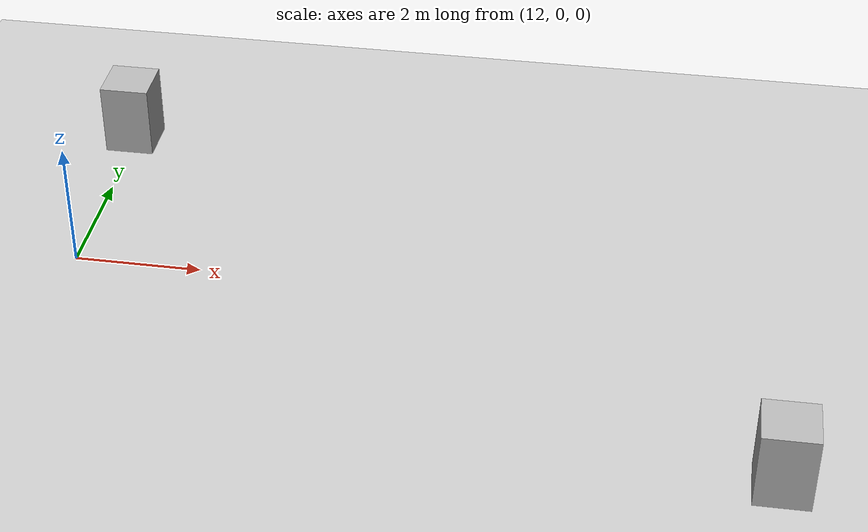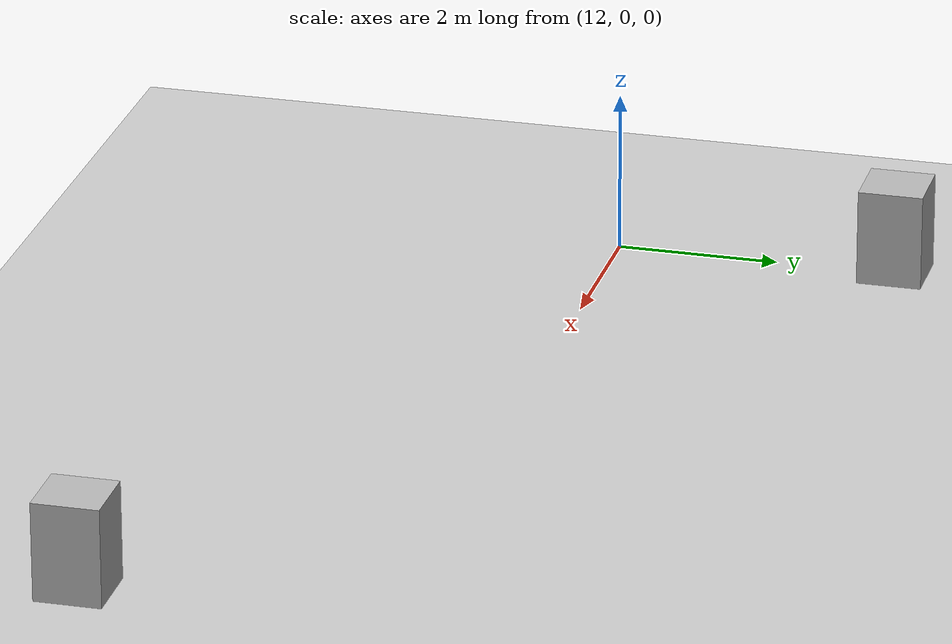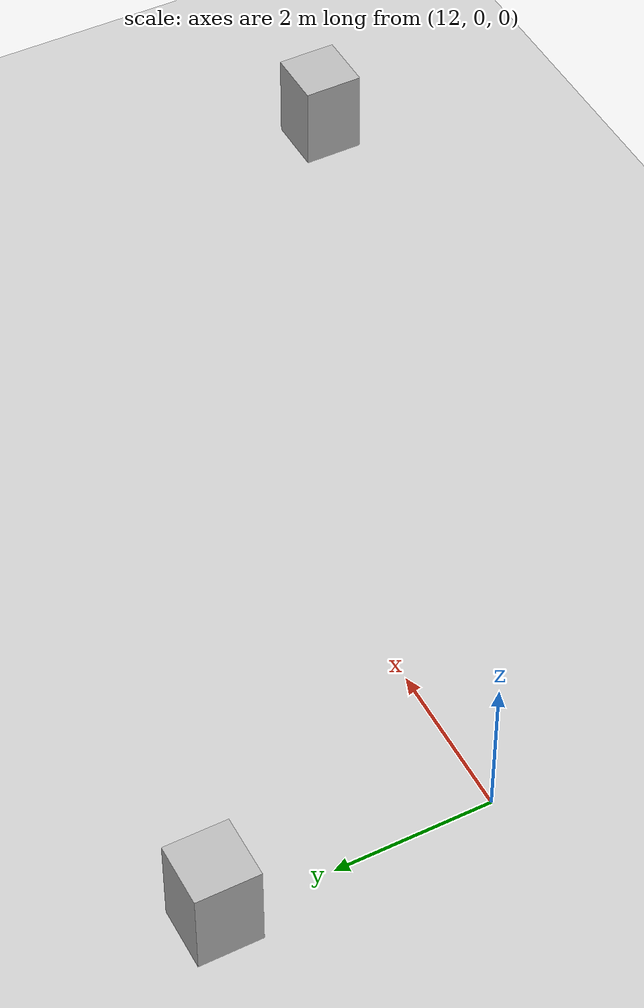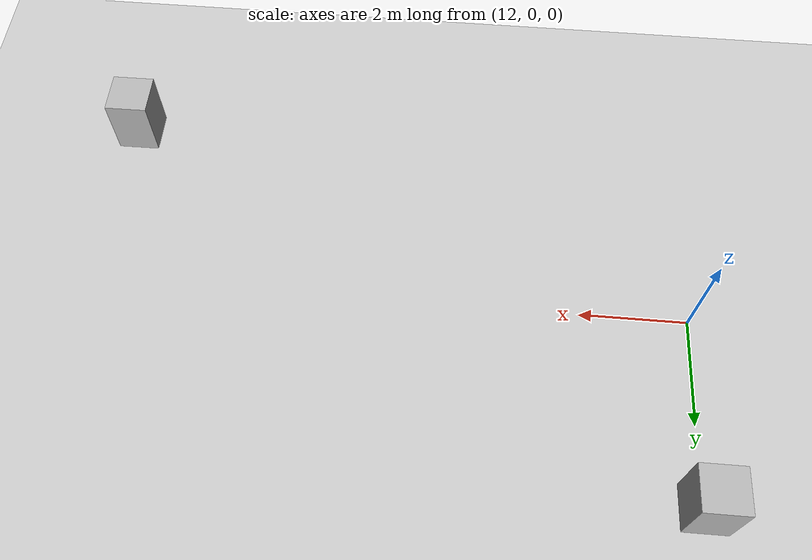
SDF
<?xml version="1.0"?>
<sdf version="1.6">
  <world name="v2-04g-p2-q1-qual-ackermann-circle-v140-s5342">
    <gravity>0 0 -9.81</gravity>
    <physics name="v2_deterministic" type="ode">
      <max_step_size>0.002</max_step_size>
      <real_time_update_rate>500</real_time_update_rate>
    </physics>
    <include>
      <uri>model://sun</uri>
    </include>
    <include>
      <uri>model://ground_plane</uri>
    </include>
    <model name="cruise-left">
      <static>true</static>
      <pose>11.981259502 3.471678146 0.600000000 0 0 0.001869945</pose>
      <link name="link">
        <collision name="collision">
          <geometry>
            <box>
              <size>0.800000 0.800000 1.200000</size>
            </box>
          </geometry>
        </collision>
        <visual name="visual">
          <geometry>
            <box>
              <size>0.800000 0.800000 1.200000</size>
            </box>
          </geometry>
        </visual>
      </link>
    </model>
    <model name="cruise-right">
      <static>true</static>
      <pose>22.965498812 -3.540402798 0.600000000 0 0 0.005912975</pose>
      <link name="link">
        <collision name="collision">
          <geometry>
            <box>
              <size>0.800000 0.800000 1.200000</size>
            </box>
          </geometry>
        </collision>
        <visual name="visual">
          <geometry>
            <box>
              <size>0.800000 0.800000 1.200000</size>
            </box>
          </geometry>
        </visual>
      </link>
    </model>
  </world>
</sdf>
